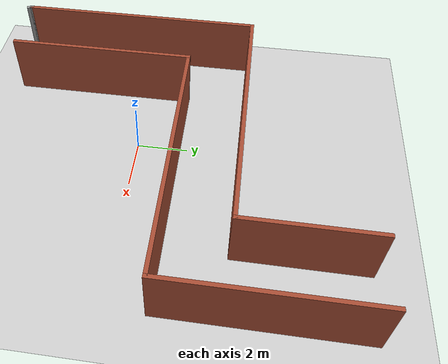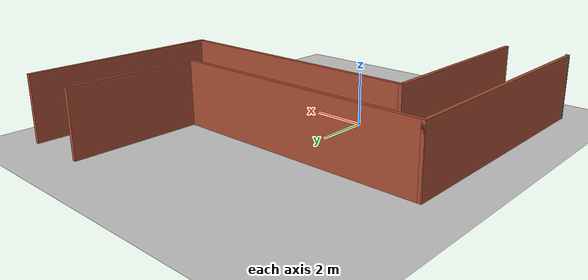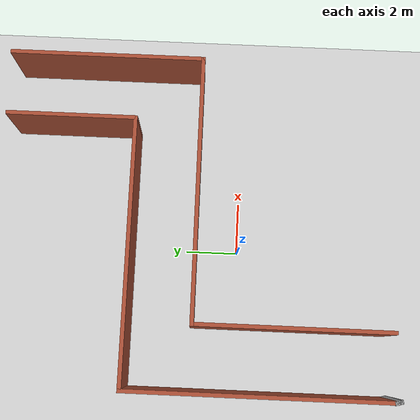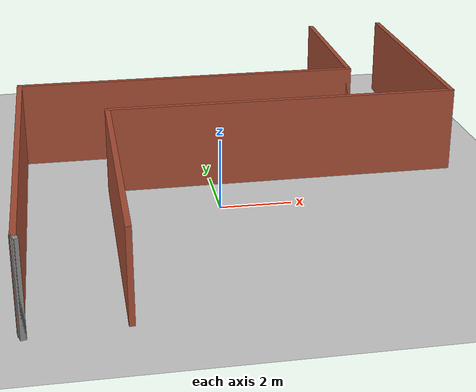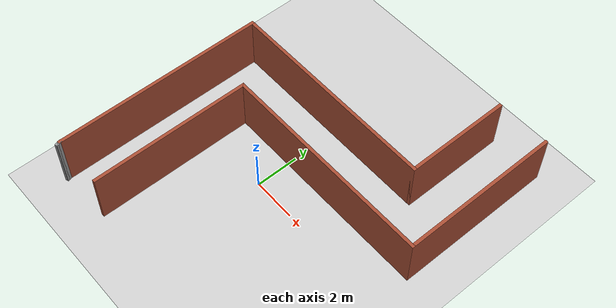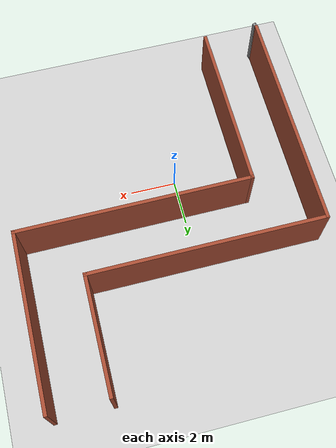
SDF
<sdf version="1.7">
 <world name="default">
  <model name="ground_plane">
   <static>1</static>
   <link name="link">
    <collision name="collision">
     <geometry><plane><normal>0 0 1</normal><size>100 100</size></plane></geometry>
     <surface><friction><ode><mu>100</mu><mu2>50</mu2></ode></friction></surface>
    </collision>
    <visual name="visual">
     <cast_shadows>0</cast_shadows>
     <geometry><plane><normal>0 0 1</normal><size>100 100</size></plane></geometry>
     <material>
      <script><uri>file://media/materials/scripts/gazebo.material</uri><name>Gazebo/Grey</name></script>
     </material>
    </visual>
   </link>
  </model>
  <light name="sun" type="directional">
   <pose>0 0 10 0 -0 0</pose>
   <diffuse>0.8 0.8 0.8 1</diffuse>
   <specular>0.2 0.2 0.2 1</specular>
   <attenuation>
    <range>1000</range>
    <constant>0.9</constant>
    <linear>0.01</linear>
    <quadratic>0.001</quadratic>
   </attenuation>
   <direction>-0.5 0.1 -0.9</direction>
   <spot><inner_angle>0</inner_angle><outer_angle>0</outer_angle><falloff>0</falloff></spot>
  </light>
  <scene><shadows>0</shadows><ambient>0.4 0.4 0.4 1</ambient><background>0.7 0.7 0.7 1</background></scene>
  <physics type="ode">
   <real_time_update_rate>1000</real_time_update_rate>
   <max_step_size>0.001</max_step_size>
   <real_time_factor>1</real_time_factor>
   <ode>
    <solver>
     <type>quick</type>
     <iters>150</iters>
     <precon_iters>0</precon_iters>
     <sor>1.4</sor>
     <use_dynamic_moi_rescaling>1</use_dynamic_moi_rescaling>
    </solver>
    <constraints>
     <cfm>1e-05</cfm>
     <erp>0.2</erp>
     <contact_max_correcting_vel>2000</contact_max_correcting_vel>
     <contact_surface_layer>0.01</contact_surface_layer>
    </constraints>
   </ode>
  </physics>
  <gravity>0 0 -9.8</gravity>
  <magnetic_field>6e-06 2.3e-05 -4.2e-05</magnetic_field>
  <atmosphere type="adiabatic"/>
  <audio><device>default</device></audio>
  <spherical_coordinates>
   <surface_model>EARTH_WGS84</surface_model>
   <latitude_deg>0</latitude_deg>
   <longitude_deg>0</longitude_deg>
   <elevation>0</elevation>
   <heading_deg>0</heading_deg>
  </spherical_coordinates>
  <model name="Maze">
   <pose>0.88159 1.55611 0 0 -0 0</pose>
   <link name="Wall_0">
    <collision name="Wall_0_Collision">
     <geometry><box><size>0.3 0.15 2.5</size></box></geometry>
     <pose>0 0 1.25 0 -0 0</pose>
    </collision>
    <visual name="Wall_0_Visual">
     <pose>0 0 1.25 0 -0 0</pose>
     <geometry><box><size>0.3 0.15 2.5</size></box></geometry>
     <material>
      <script><uri>file://media/materials/scripts/gazebo.material</uri><name>Gazebo/Grey</name></script>
      <ambient>1 1 1 1</ambient>
     </material>
     <meta><layer>0</layer></meta>
    </visual>
    <pose>-6.24964 -7.35713 0 0 -0 1.8326</pose>
   </link>
   <link name="Wall_1">
    <collision name="Wall_1_Collision">
     <geometry><box><size>0.3 0.15 2.5</size></box></geometry>
     <pose>0 0 1.25 0 -0 0</pose>
    </collision>
    <visual name="Wall_1_Visual">
     <pose>0 0 1.25 0 -0 0</pose>
     <geometry><box><size>0.3 0.15 2.5</size></box></geometry>
     <material>
      <script><uri>file://media/materials/scripts/gazebo.material</uri><name>Gazebo/Grey</name></script>
      <ambient>1 1 1 1</ambient>
     </material>
     <meta><layer>0</layer></meta>
    </visual>
    <pose>-6.24964 -7.35713 0 0 -0 -1.309</pose>
   </link>
   <link name="Wall_10">
    <collision name="Wall_10_Collision">
     <geometry><box><size>7.5 0.15 2.5</size></box></geometry>
     <pose>0 0 1.25 0 -0 0</pose>
    </collision>
    <visual name="Wall_10_Visual">
     <pose>0 0 1.25 0 -0 0</pose>
     <geometry><box><size>7.5 0.15 2.5</size></box></geometry>
     <material>
      <script><uri>file://media/materials/scripts/gazebo.material</uri><name>Gazebo/Bricks</name></script>
      <ambient>1 1 1 1</ambient>
     </material>
     <meta><layer>0</layer></meta>
    </visual>
    <pose>6.2859 3.77143 0 0 -0 1.5708</pose>
   </link>
   <link name="Wall_4">
    <collision name="Wall_4_Collision">
     <geometry><box><size>10 0.15 2.5</size></box></geometry>
     <pose>0 0 1.25 0 -0 0</pose>
    </collision>
    <visual name="Wall_4_Visual">
     <pose>0 0 1.25 0 -0 0</pose>
     <geometry><box><size>10 0.15 2.5</size></box></geometry>
     <material>
      <script><uri>file://media/materials/scripts/gazebo.material</uri><name>Gazebo/Bricks</name></script>
      <ambient>1 1 1 1</ambient>
     </material>
     <meta><layer>0</layer></meta>
    </visual>
    <pose>-6.26905 -2.35968 0 0 -0 1.5708</pose>
   </link>
   <link name="Wall_5">
    <collision name="Wall_5_Collision">
     <geometry><box><size>10.25 0.15 2.5</size></box></geometry>
     <pose>0 0 1.25 0 -0 0</pose>
    </collision>
    <visual name="Wall_5_Visual">
     <pose>0 0 1.25 0 -0 0</pose>
     <geometry><box><size>10.25 0.15 2.5</size></box></geometry>
     <material>
      <script><uri>file://media/materials/scripts/gazebo.material</uri><name>Gazebo/Bricks</name></script>
      <ambient>1 1 1 1</ambient>
     </material>
     <meta><layer>0</layer></meta>
    </visual>
    <pose>-1.21905 2.56532 0 0 -0 0</pose>
   </link>
   <link name="Wall_6">
    <collision name="Wall_6_Collision">
     <geometry><box><size>5 0.15 2.5</size></box></geometry>
     <pose>0 0 1.25 0 -0 0</pose>
    </collision>
    <visual name="Wall_6_Visual">
     <pose>0 0 1.25 0 -0 0</pose>
     <geometry><box><size>5 0.15 2.5</size></box></geometry>
     <material>
      <script><uri>file://media/materials/scripts/gazebo.material</uri><name>Gazebo/Bricks</name></script>
      <ambient>1 1 1 1</ambient>
     </material>
     <meta><layer>0</layer></meta>
    </visual>
    <pose>3.83095 4.99032 0 0 -0 1.5708</pose>
   </link>
   <link name="Wall_8">
    <collision name="Wall_8_Collision">
     <geometry><box><size>7.5 0.15 2.5</size></box></geometry>
     <pose>0 0 1.25 0 -0 0</pose>
    </collision>
    <visual name="Wall_8_Visual">
     <pose>0 0 1.25 0 -0 0</pose>
     <geometry><box><size>7.5 0.15 2.5</size></box></geometry>
     <material>
      <script><uri>file://media/materials/scripts/gazebo.material</uri><name>Gazebo/Bricks</name></script>
      <ambient>1 1 1 1</ambient>
     </material>
     <meta><layer>0</layer></meta>
    </visual>
    <pose>-3.8141 -3.57857 0 0 -0 1.5708</pose>
   </link>
   <link name="Wall_9">
    <collision name="Wall_9_Collision">
     <geometry><box><size>10.25 0.15 2.5</size></box></geometry>
     <pose>0 0 1.25 0 -0 0</pose>
    </collision>
    <visual name="Wall_9_Visual">
     <pose>0 0 1.25 0 -0 0</pose>
     <geometry><box><size>10.25 0.15 2.5</size></box></geometry>
     <material>
      <script><uri>file://media/materials/scripts/gazebo.material</uri><name>Gazebo/Bricks</name></script>
      <ambient>1 1 1 1</ambient>
     </material>
     <meta><layer>0</layer></meta>
    </visual>
    <pose>1.2359 0.096426 0 0 -0 0</pose>
   </link>
   <static>1</static>
  </model>
 </world>
</sdf>
